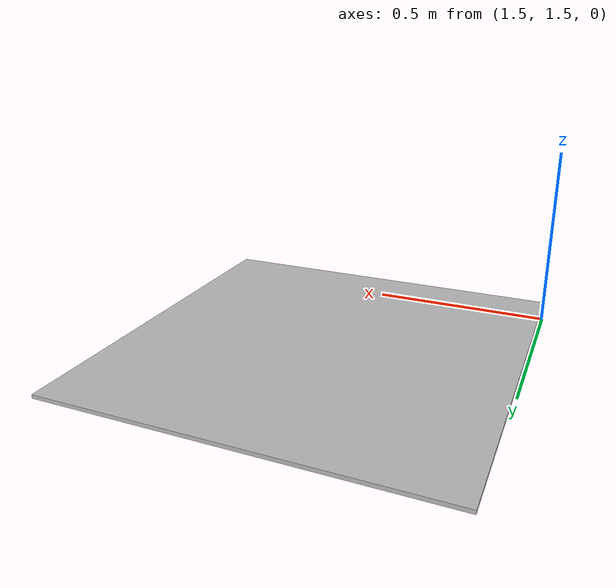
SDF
<?xml version='1.0'?>
<sdf version='1.6'>
  <model name='Apriltag36_11_00000'> <!--custom_ground_plane_box-->
     <pose >2 2 0.05 0 0 0</pose>

    <link name='link'>

   <inertial>
          <pose>0 0 0 0 0 0</pose>
          <mass>100</mass>
          <inertia>
            <ixx>3.33341666667e+3</ixx>
            <ixy>0.0</ixy>
            <ixz>0.0</ixz>
            <iyy>3.33341666667e+3</iyy>
            <iyz>0.0</iyz>
            <izz>6.66666666667e+3</izz>
          </inertia>
    </inertial>

<collision name="collision">
          <geometry>
            <box>
              <size>0.5 0.5 1.0</size>
            </box>
          </geometry>
          <surface>
              <friction>
                <ode>
                  <mu>0</mu>
                  <mu2>0</mu2>
                </ode>
              </friction>
            </surface>
        </collision>

      <visual name='visual'>
        <geometry>
          <box>
          <size>1.0 1.0 0.01</size>
          </box>
        </geometry>
           <material>
          <script>
            <uri>model://Apriltag36_11_00000/materials/scripts</uri>
            <uri>model://Apriltag36_11_00000/materials/textures</uri>
            <name>Apriltag36_11_00000</name>
          </script>
        </material>
      </visual>
     </link>

    <!--aded line below for planar movement plugin: https://www.youtube.com/watch?v=mtSpqObg9X4&ab_channel=TheConstruct-->
  <plugin name="plannar_mover_plugin" filename="libplannar_mover_plugin.so"/>
  </model>
</sdf>
